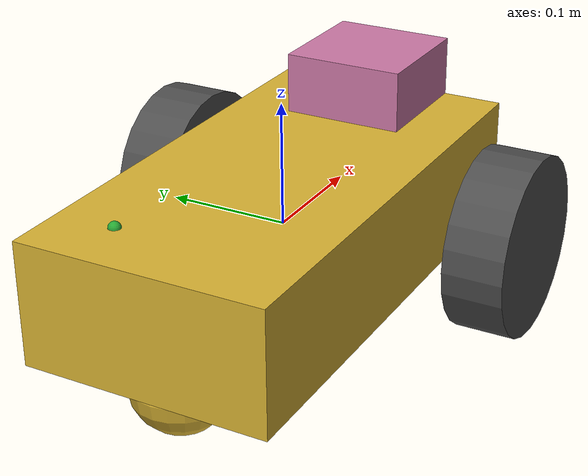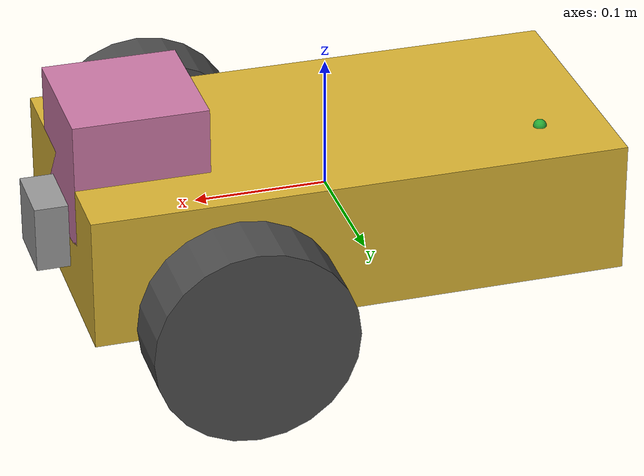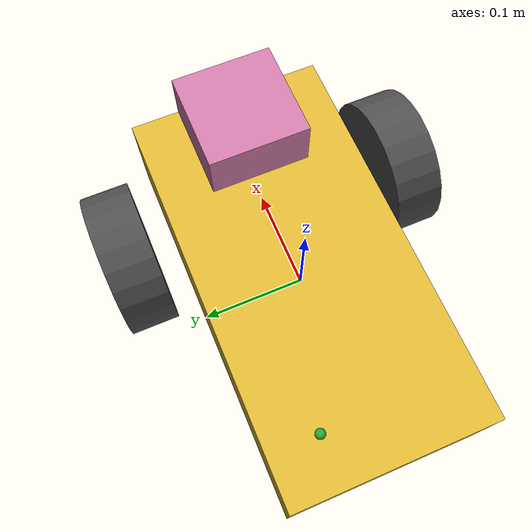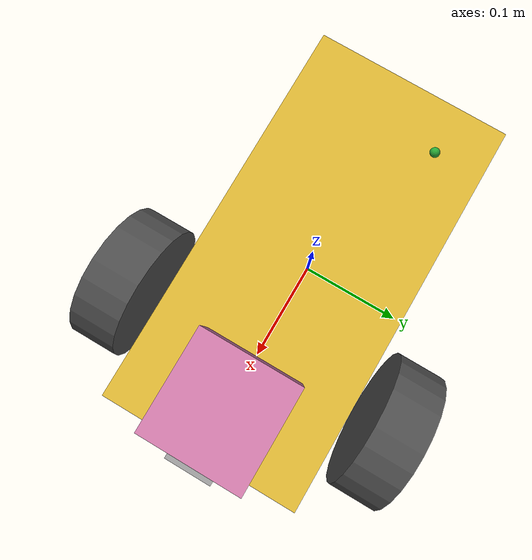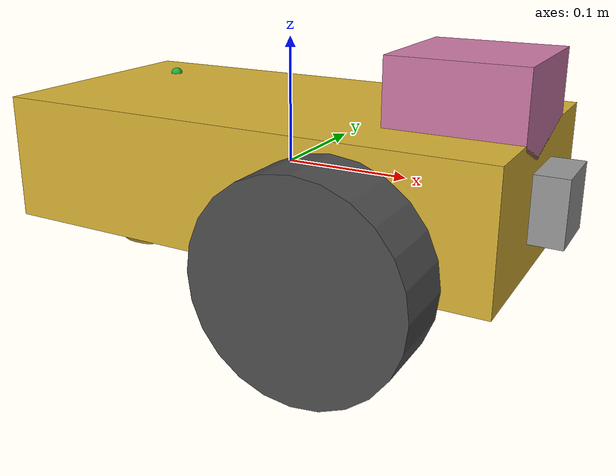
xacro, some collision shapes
<?xml version="1.0"?>

<robot name="my_robot" xmlns:xacro="http://www.ros.org/wiki/xacro">

    <xacro:include filename="$(find where_am_i)/urdf/my_robot.gazebo" />

    <link name="robot_footprint"/>

    <joint name="robot_footprint_joint" type="fixed">
        <origin xyz="0 0 0" rpy="0 0 0" />
        <parent link="robot_footprint"/>
        <child link="chassis" />
    </joint>

    <link name="chassis">
        <pose>0 0 0.1 0 0 0</pose>

        <inertial>
            <mass value="15.0"/>
            <origin xyz="-0.05 0 -0.05" rpy="0 0 0"/>
            <inertia
                    ixx="0.1" ixy="0" ixz="0"
                    iyy="0.1" iyz="0"
                    izz="0.1"
            />
        </inertial>

        <collision name="collision">
            <origin xyz="0 0 0" rpy=" 0 0 0"/>
            <geometry>
                <box size=".4 .2 .1"/>
            </geometry>
        </collision>

        <visual name="chassis_visual">
            <origin xyz="0 0 0" rpy=" 0 0 0"/>
            <geometry>
                <box size=".4 .2 .1"/>
            </geometry>
        </visual>

        <collision name="back_caster_collision">
            <origin xyz="-0.15 0 -0.06" rpy="0 0 0"/>
            <geometry>
                <sphere radius="0.04"/>
            </geometry>
        </collision>

        <visual name="back_caster_visual">
            <origin xyz="-0.15 0 -0.06" rpy="0 0 0"/>
            <geometry>
                <sphere radius="0.04"/>
            </geometry>
        </visual>
    </link>

    <link name="led_visual">
        <visual>
            <origin xyz="0 0 0" rpy="0 0 0"/>
            <geometry>
                <sphere radius="0.005"/>
            </geometry>
        </visual>
    </link>

    <joint type="fixed" name="led_visual_hinge">
        <origin xyz="-0.15 0.05 0.05" rpy=" 0 0 0"/>
        <child link="led_visual"/>
        <parent link="chassis"/>
        <axis xyz="0 0 1" rpy="0 0 0"/>
    </joint>

    <link name="left_wheel">
        <visual name="left_wheel_visual">
            <origin xyz="0 0 0" rpy="0 1.5707 1.5707"/>
            <geometry>
                <cylinder radius="0.075" length="0.05"/>
            </geometry>
        </visual>

        <collision name="left_wheel_collision">
            <origin xyz="0 0 0" rpy="0 1.5707 1.5707"/>
            <geometry>
                <cylinder radius="0.075" length="0.05"/>
            </geometry>
        </collision>

        <inertial>
            <origin xyz="0 0 0" rpy="0 1.5707 1.5707"/>
            <mass value="5.0"/>
            <inertia
                    ixx="0.1" ixy="0" ixz="0"
                    iyy="0.1" iyz="0"
                    izz="0.1"/>
        </inertial>
    </link>

    <link name="right_wheel">
        <visual name="right_wheel_visual">
            <origin xyz="0 0 0" rpy="0 1.5707 1.5707"/>
            <geometry>
                <cylinder radius="0.075" length="0.05"/>
            </geometry>
        </visual>

        <collision name="right_wheel_collision">
            <origin xyz="0 0 0" rpy="0 1.5707 1.5707"/>
            <geometry>
                <cylinder radius="0.075" length="0.05"/>
            </geometry>
        </collision>

        <inertial>
            <origin xyz="0 0 0" rpy="0 1.5707 1.5707"/>
            <mass value="5.0"/>
            <inertia
                    ixx="0.1" ixy="0" ixz="0"
                    iyy="0.1" iyz="0"
                    izz="0.1"/>
        </inertial>
    </link>

    <joint type="continuous" name="left_wheel_hinge">
        <origin xyz="0.1 0.15 -0.025" rpy="0 0 0"/>
        <child link="left_wheel"/>
        <parent link="chassis"/>
        <axis xyz="0 1 0" rpy="0 0 0"/>
        <limit effort="10000" velocity="1000"/>
        <dynamics damping="1.0" friction="1.0"/>
    </joint>

    <joint type="continuous" name="right_wheel_hinge">
        <origin xyz="0.1 -0.15 -0.025" rpy="0 0 0"/>
        <child link="right_wheel"/>
        <parent link="chassis"/>
        <axis xyz="0 1 0" rpy="0 0 0"/>
        <limit effort="10000" velocity="1000"/>
        <dynamics damping="1.0" friction="1.0"/>
    </joint>

    <link name="camera">
        <visual>
            <origin xyz="0 0 0" rpy="0 0 0"/>
            <geometry>
                <box size="0.05 0.05 0.05"/>
            </geometry>
        </visual>

        <collision>
            <origin xyz="0 0 0" rpy="0 0 0"/>
            <geometry>
                <box size="0.05 0.05 0.05"/>
            </geometry>
        </collision>

        <inertial>
            <mass value="0.1"/>
            <origin xyz="0.0 0 0" rpy=" 0 0 0"/>
            <box_inertia
                    m="0.1" x="0.05" y="0.05" z="0.05"/>
            <inertia
                    ixx="1e-6" ixy="0" ixz="0"
                    iyy="1e-6" iyz="0"
                    izz="1e-6"
            />
        </inertial>
    </link>

    <joint type="fixed" name="camera_joint">
        <axis xyz="0 1 0" rpy="0 0 0"/>
        <origin xyz="0.2 0 0" rpy="0 0 0"/>
        <parent link="chassis"/>
        <child link="camera"/>
    </joint>

    <link name="hokuyo">
        <visual>
            <origin xyz="0 0 0" rpy="0 0 0"/>
            <geometry>
                <mesh filename="package://where_am_i/meshes/hokuyo.dae" />
            </geometry>
        </visual>

        <collision>
            <origin xyz="0 0 0" rpy="0 0 0"/>
            <geometry>
                <box size="0.1 0.1 0.1"/>
            </geometry>
        </collision>

        <inertial>
            <mass value="1e-5"/>
            <origin xyz="0.0 0 0" rpy=" 0 0 0"/>
            <inertia
                    ixx="1e-6" ixy="0" ixz="0"
                    iyy="1e-6" iyz="0"
                    izz="1e-6"
            />
        </inertial>
    </link>

    <joint type="fixed" name="hokuyo_joint">
        <axis xyz="0 1 0" rpy="0 0 0"/>
        <origin xyz="0.15 0 0.05" rpy="0 0 0"/>
        <parent link="chassis"/>
        <child link="hokuyo"/>
    </joint>

    <gazebo reference="right_wheel">
        <material>Gazebo/DarkGrey</material>
    </gazebo>

    <gazebo reference="left_wheel">
        <material>Gazebo/DarkGrey</material>
    </gazebo>

    <gazebo reference="led_visual">
        <material>Gazebo/GreenGlow</material>
    </gazebo>

    <gazebo reference="chassis">
        <material>Gazebo/Gold</material>
    </gazebo>

    <gazebo reference="camera">
        <material>Gazebo/Grey</material>
    </gazebo>

</robot>
